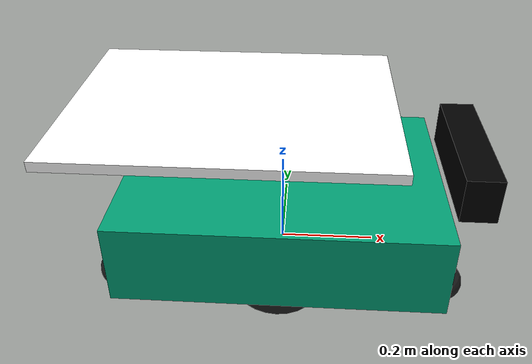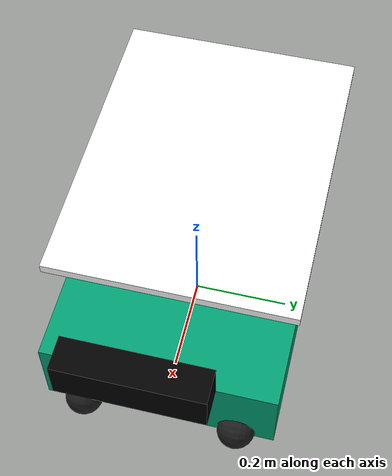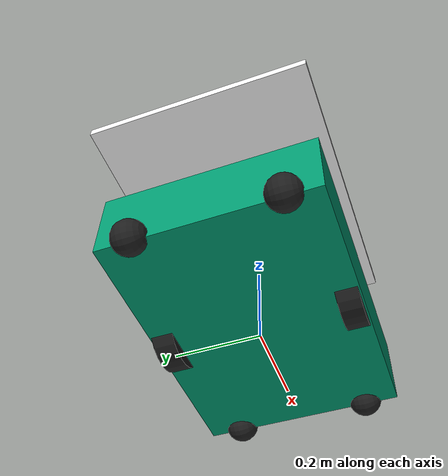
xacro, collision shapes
<?xml version="1.0"?>
<robot xmlns:xacro="http://www.ros.org/wiki/xacro" name="idr_robot">

    <!--................................ XACRO CONSTANTS .............................. -->

    <xacro:property name="chassis_mass" value="70"/>
    <xacro:property name="chassis_length" value="0.655"/>
    <xacro:property name="chassis_width" value="0.478"/>
    <xacro:property name="chassis_height" value="0.1685"/>

    <xacro:property name="traction_wheel_mass" value="1"/>
    <xacro:property name="traction_wheel_base" value="0.88"/>
    <xacro:property name="traction_max_wheel_torque" value="20000"/>
    <xacro:property name="traction_wheel_friction" value="5.0"/>

    <xacro:property name="trolley_wheel_mass" value="0.1"/>
    <xacro:property name="trolley_track_width" value="0.321"/> <!-- distance from center of front or back left wheel to right wheel-->
    <xacro:property name="trolley_wheel_friction" value="0.0"/>
    <xacro:property name="trolley_wheel_radius" value="0.0375"/>
    <!-- a small constant -->
    <xacro:property name="eps" value="0.002"/>

    <xacro:property name="traction_wheel_radius" value="0.0842"/>
    <xacro:property name="traction_wheel_width" value="0.05"/>
    <xacro:property name="traction_track_width" value="0.420"/> <!-- distance from center of middle left wheel to right wheel-->

    <xacro:property name="two_d_lidar_update_rate" value="30"/>
    <xacro:property name="two_d_lidar_sample_size" value="361"/>
    <xacro:property name="two_d_lidar_min_angle" value="0"/>
    <xacro:property name="two_d_lidar_max_angle" value="360"/>
    <xacro:property name="two_d_lidar_min_range" value="0.6"/>
    <xacro:property name="two_d_lidar_max_range" value="8"/>

    <xacro:arg name="gpu" default="false"/>
    <xacro:property name="gpu" value="$(arg gpu)" />
    <xacro:arg name="organize_cloud" default="false"/>
    <xacro:property name="organize_cloud" value="$(arg organize_cloud)" />

    <xacro:property name="camera_baseline" value="0.06"/>
    <xacro:property name="camera_height" value="0.10"/>
    <xacro:property name="camera_horizontal_fov" value="60"/>

    <xacro:arg name="robot_namespace" default=""/>
    <xacro:arg name="wheel_odom_topic" default="odom" />
    <xacro:arg name="camera_enabled" default="true" />
    <xacro:arg name="stereo_camera_enabled" default="false" />
    <xacro:arg name="two_d_lidar_enabled" default="false" />
    <xacro:arg name="publish_wheel_odom_tf" default="true" />
    <xacro:arg name="ground_truth_frame" default="map"/>
    <xacro:arg name="sim_gazebo" default="false" />
    <xacro:arg name="sim_ign" default="false" />
    <xacro:arg name="sim_gz" default="false" />
    <xacro:arg name="odometry_source" default="world" />

    <xacro:property name="odometry_source" value="$(arg odometry_source)"/>

    <!-- ............................... LOAD MACROS ................................. -->

    <xacro:include filename="$(find idr_robot)/urdf/materials.xacro"/>
    <xacro:include filename="$(find idr_robot)/urdf/macros.xacro"/>

    <xacro:if value="$(arg sim_gazebo)">
        <xacro:include filename="$(find idr_robot)/urdf/gazebo.xacro"/>
    </xacro:if>

    <xacro:if value="$(arg sim_ign)">
        <xacro:include filename="$(find idr_robot)/urdf/ign.xacro"/>
    </xacro:if>

    <xacro:if value="$(arg sim_gz)">
        <xacro:include filename="$(find idr_robot)/urdf/gz.xacro"/>
    </xacro:if>

    <!-- .......................... ...... BASE LINK .................................. -->
    <link name="base_footprint"/>

    <link name="base_link"/>

    <joint name="base_joint" type="fixed">
        <parent link="base_footprint"/>
        <child link="base_link"/>
        <origin xyz="0.0 0.0 ${chassis_height/2 + traction_wheel_radius - 0.02}" rpy="0 0 0.0" />  <!-- 0.02 is offset to make robot on the ground -->
    </joint>

    <link name="chassis_link">

        <collision>
            <origin xyz="0 0 -0.05" rpy="0 0 0" />
            <geometry>
                <box size="${chassis_length} ${chassis_width} ${chassis_height}"/>
            </geometry>
        </collision>

        <visual>
            <origin xyz="0 0 -0.02" rpy="0 0 3.14" />
            <geometry>
                <mesh filename="file://$(find idr_robot)/meshes/amr_bot_body.dae" scale="1 1 1"/>
            </geometry>
        </visual>

        <inertial>
            <mass value="${chassis_mass}" />
            <xacro:box_inertia m="${chassis_mass}" x="${chassis_length}" y="${chassis_width}" z = "${chassis_height}"/>
        </inertial>

    </link>

    <joint name="chassis_joint" type="fixed">
        <parent link="base_link"/>
        <child link="chassis_link"/>
        <origin xyz="0.0 0 0" rpy="0 0 0.0" />
    </joint>

    <!-- ................................ WHEELS ..................................... -->

    <xacro:trolley_wheel cardinality="front" dexterity="left" origin_x="${chassis_length/2}" origin_y="${trolley_track_width/2}" origin_z="-${trolley_wheel_radius+chassis_height/2}"/>
    <xacro:trolley_wheel cardinality="front" dexterity="right" origin_x="${chassis_length/2}" origin_y="-${trolley_track_width/2}" origin_z="-${trolley_wheel_radius+chassis_height/2}"/>

    <xacro:trolley_wheel cardinality="back" dexterity="left" origin_x="-${chassis_length/2}" origin_y="${trolley_track_width/2}" origin_z="-${trolley_wheel_radius+chassis_height/2}"/>
    <xacro:trolley_wheel cardinality="back" dexterity="right" origin_x="-${chassis_length/2}" origin_y="-${trolley_track_width/2}" origin_z="-${trolley_wheel_radius+chassis_height/2}"/>

    <xacro:traction_wheel_left cardinality="middle" dexterity="left" origin_x="0" origin_y="${traction_track_width/2}" origin_z="-${chassis_height/2+2*trolley_wheel_radius+eps-traction_wheel_radius}"/>
    <xacro:traction_wheel_right cardinality="middle" dexterity="right" origin_x="0" origin_y="-${traction_track_width/2}" origin_z="-${chassis_height/2+2*trolley_wheel_radius+eps-traction_wheel_radius}"/>

    <!-- ............................. 2D LIDAR ........................................ -->

    <xacro:if value="$(arg two_d_lidar_enabled)">

        <link name="two_d_lidar">
            <collision>
                <origin xyz="0 0 0" rpy="0 0 0" />
                <geometry>
                    <cylinder length="0.06" radius="0.075"/>
                </geometry>
            </collision>

            <visual>
                <origin xyz="0 0 0" rpy="0 0 0" />
                <geometry>
                    <cylinder length="0.06" radius="0.075"/>
                </geometry>
                <material name="aluminium"/>
            </visual>

            <inertial>
                <origin xyz="0 0 0" rpy="0 0 0" />
                <mass value="0.1"/>
                <xacro:cylinder_inertia m="0.1" r="0.075" h="0.06"/>
            </inertial>
        </link>

        <joint name="two_d_lidar_joint" type="fixed">
            <parent link="base_link"/>
            <child link="two_d_lidar"/>
            <origin xyz="0.0 0 0.08" rpy="0 0 0" />
        </joint>

        <gazebo reference="two_d_lidar">
            <material>Gazebo/White</material>
        </gazebo>

    </xacro:if>

    <!-- ............................. 3D LIDAR ........................................ -->

    <link name="livox_frame"/>

    <joint name="3D_lidar_joint" type="fixed">
        <parent link="base_link"/>
        <child link="livox_frame"/>
        <origin xyz="0.315 0.0 0.16" rpy="0.0 0.0 0.0"/>
    </joint>

    <!-- ............................. IMU ........................................ -->

    <link name="imu_frame"/>

    <joint name="imu_joint" type="fixed">
        <parent link="base_link"/>
        <child link="imu_frame"/>
        <origin xyz="0.0 0.0 0.08" rpy="0.0 0.0 0.0"/>
    </joint>

    <!-- ............................. CAMERA ........................................ -->

    <xacro:if value="$(arg camera_enabled)">

        <!-- KINECT CAMERA -->

        <link name="camera_base">

            <collision>
                <origin xyz="0 0 0" rpy="0 0 0" />
                <geometry>
                    <box size="0.07 0.3 0.09"/>
                </geometry>
            </collision>

            <visual>
                <origin xyz="0 0 0" rpy="0 0 0" />
                <geometry>
                    <sphere radius="0"/>
                </geometry>
                <material name="black"/>
            </visual>

            <inertial>
                <mass value="0.01"/>
                <xacro:box_inertia m="0.01" x="0.07" y="0.3" z = "0.09"/>
            </inertial>

        </link>

        <joint name="kinect_camera_joint" type="fixed">
            <origin rpy="0 0 0" xyz="${0.04+chassis_length/2} -0.032 ${0.065+chassis_height/7}"/>
            <parent link="base_link"/>
            <child link="camera_base"/>
        </joint>

    </xacro:if>

    <!-- .............................STEREO CAMERA ........................................ -->

    <xacro:if value="$(arg stereo_camera_enabled)">

        <!-- STEREO CAMERA -->

        <link name="stereo_camera">

            <collision>
                <origin xyz="0 0 0" rpy="0 0 0" />
                <geometry>
                    <box size="0.07 0.3 0.09"/>
                </geometry>
            </collision>

            <visual>
                <origin xyz="0 0 0" rpy="0 0 0" />
                <geometry>
                    <sphere radius="0"/>
                </geometry>
                <material name="black"/>
            </visual>

            <inertial>
                <mass value="0.01"/>
                <xacro:box_inertia m="0.01" x="0.07" y="0.3" z = "0.09"/>
            </inertial>

        </link>

        <joint name="stereo_camera_joint" type="fixed">
            <origin rpy="0 0 0" xyz="${chassis_length/2} 0 ${chassis_height/7}"/>
            <parent link="base_link"/>
            <child link="stereo_camera"/>
        </joint>

        <link name="stereo_camera_optical"/>

        <joint name="stereo_camera_optical_joint" type="fixed">
            <origin xyz="0 0 0" rpy="${-pi/2} 0 ${-pi/2}"/>
            <parent link="stereo_camera"/>
            <child link="stereo_camera_optical"/>
        </joint>

    </xacro:if>

    <!-- ............................. ROOF ........................................ -->

    <link name="lifting_link">

        <collision>
            <origin xyz="-0.1 0 0.015" rpy="0 0 0" />
            <geometry>
                <box size="0.65 0.5 0.02"/>
            </geometry>
        </collision>

        <visual>
                <origin xyz="0.2225 -0.2393 -0.155" rpy="1.57 0 3.14" />
                <geometry>
                    <!--box size="0.5 0.5 0.01" /-->
                    <mesh filename="file://$(find idr_robot)/meshes/lifting.STL" scale="0.001 0.001 0.001"/>
                </geometry>
                <material name="white"/>
            </visual>

        <inertial>
            <mass value="0.01"/>
            <xacro:box_inertia m="0.2" x="1" y="0.6" z = "0.015"/>
        </inertial>

    </link>

    <joint name="lift_joint" type="prismatic">
        <parent link="base_footprint"/>
        <child link="lifting_link"/>
        <origin xyz="0 0 0.31" rpy="0 0 0"/>
        <axis xyz="0 0 1" />
        <limit lower="0" upper="0.05" effort="200.0" velocity="0.01"/>
        <dynamics damping="20.0" friction="5.0"/>
    </joint>

</robot>

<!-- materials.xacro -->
<robot xmlns:xacro="http://www.ros.org/wiki/xacro" name="idr_robot">

    <material name="black">
        <color rgba="0.0 0.0 0.0 1.0"/>
    </material>

    <material name="blue">
        <color rgba="0.0 0.0 0.8 1.0"/>
    </material>

    <material name="green">
        <color rgba="0.0 0.8 0.0 1.0"/>
    </material>

    <material name="yellow">
        <color rgba="1.0 1.0 0.0 1.0"/>
    </material>

    <material name="dark_grey">
        <color rgba="0.2 0.2 0.2 1.0"/>
    </material>

    <material name="light_grey">
        <color rgba="0.8 0.8 0.8 1.0"/>
    </material>

    <material name="orange">
        <color rgba="${255/255} ${108/255} ${10/255} 1.0"/>
    </material>

    <material name="brown">
        <color rgba="${139/255} ${69/255} ${19/255} 1.0"/>
    </material>

    <material name="red">
        <color rgba="0.8 0.0 0.0 1.0"/>
    </material>

    <material name="turquoise">
        <color rgba="${64/255} ${224/255} ${208/255} 1.0"/>
    </material>

    <material name="purple">
        <color rgba="${128/255} ${0/255} ${128/255} 1.0"/>
    </material>

    <material name="white">
        <color rgba="1.0 1.0 1.0 1.0"/>
    </material>

    <material name="aluminium">
        <color rgba="0.5 0.5 0.5 1"/>
    </material>

    <material name="plastic">
        <color rgba="0.1 0.1 0.1 1"/>
    </material>

</robot>

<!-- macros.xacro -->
<robot xmlns:xacro="http://www.ros.org/wiki/xacro" name="idr_robot">

    <!--................................ INERTIA MATRICES .............................. -->

    <xacro:macro name="cylinder_inertia" params="m r h">
        <inertia ixx="${m * (3 * r * r + h * h) / 12}" ixy="0" ixz="0" iyy="${m * (3 * r * r + h * h) / 12}" iyz="0" izz="${m * r * r / 2}" />
    </xacro:macro>

    <xacro:macro name="box_inertia" params="m x y z">
        <inertia ixx="${m * (y * y + z * z) / 12}" ixy="0" ixz="0" iyy="${m * (x * x + z * z) / 12}" iyz="0" izz="${m * (y * y + x * x) / 12}" />
    </xacro:macro>

    <xacro:macro name="sphere_inertia" params="m r">
        <inertia ixx="${2 * m * r * r / 5}" ixy="0" ixz="0" iyy="${2 * m * r * r / 5}" iyz="0" izz="${2 * m * r * r / 5}" />
    </xacro:macro>

    <!-- ............................... TROLLEY WHEEL DEFINITION .............................. -->

    <xacro:macro name="trolley_wheel" params="cardinality dexterity origin_x origin_y origin_z">
        <link name="${cardinality}_${dexterity}_wheel">
            <collision>
                <origin xyz="0 0 0" rpy="0 ${pi/2} ${pi/2}" />
                <geometry>
                    <sphere radius="${trolley_wheel_radius+0.0016}"/>
                </geometry>
            </collision>

            <inertial>
                <origin xyz="0 0 0" rpy="0 0 0" />
                <mass value="${trolley_wheel_mass}"/>
                <xacro:sphere_inertia m="${trolley_wheel_mass}" r="${trolley_wheel_radius}"/>
            </inertial>

            <mu>0.0</mu>
        </link>

        <joint name="${cardinality}_${dexterity}_wheel_joint" type="fixed">
            <parent link="base_link"/>
            <child link="${cardinality}_${dexterity}_wheel"/>
            <origin xyz="${origin_x} ${origin_y} ${origin_z}" rpy="0 0 0" />
            <axis xyz="0 1 0" rpy="0 0 0" />
        </joint>

        <gazebo reference="${cardinality}_${dexterity}_wheel">
            <material>Gazebo/Black</material>
            <mu1 value="0.0001"/>
            <mu2 value="0.0001"/>
        </gazebo>
    </xacro:macro>

    <xacro:macro name="traction_wheel_left" params="cardinality dexterity origin_x origin_y origin_z">
        <link name="${cardinality}_${dexterity}_wheel_left">
            <collision>
                <origin xyz="0 0 0" rpy="0 ${pi/2} ${pi/2}" />
                <geometry>
                    <cylinder length="${traction_wheel_width}" radius="${traction_wheel_radius}"/>
                </geometry>
                <self_collide>false</self_collide>
            </collision>

            <visual>
                <origin xyz="0 -0.21 0.057" rpy="0 0 ${pi}" />
                <geometry>
                    <mesh filename="file://$(find idr_robot)/meshes/amr_bot_wheel_left.dae" scale="1 1 1"/>
                </geometry>
            </visual>

            <inertial>
                <origin xyz="0 0 0" rpy="0 ${pi/2} ${pi/2}" />
                <mass value="${traction_wheel_mass}"/>
                <xacro:cylinder_inertia m="${traction_wheel_mass}" r="${traction_wheel_radius}" h="${traction_wheel_width}"/>
            </inertial>

            <mu>5.0</mu>
        </link>

        <joint name="${cardinality}_${dexterity}_wheel_joint_left" type="continuous">
            <parent link="base_link"/>
            <child link="${cardinality}_${dexterity}_wheel_left"/>
            <origin xyz="${origin_x} ${origin_y} ${origin_z}" rpy="0 0 0" />
            <axis xyz="0 1 0" rpy="0 0 0" />
        </joint>

        <gazebo reference="${cardinality}_${dexterity}_wheel_left">
            <material>Gazebo/Black</material>
        </gazebo>
    </xacro:macro>

    <xacro:macro name="traction_wheel_right" params="cardinality dexterity origin_x origin_y origin_z">
        <link name="${cardinality}_${dexterity}_wheel_right">
            <collision>
                <origin xyz="0 0 0" rpy="0 ${pi/2} ${pi/2}" />
                <geometry>
                    <cylinder length="${traction_wheel_width}" radius="${traction_wheel_radius}"/>
                </geometry>
                <self_collide>false</self_collide>
            </collision>

            <visual>
                <origin xyz="0 0.21 0.057" rpy="0 0 ${pi}" />
                <geometry>
                    <mesh filename="file://$(find idr_robot)/meshes/amr_bot_wheel_right.dae" scale="1 1 1"/>
                </geometry>
            </visual>

            <inertial>
                <origin xyz="0 0 0" rpy="0 ${pi/2} ${pi/2}" />
                <mass value="${traction_wheel_mass}"/>
                <xacro:cylinder_inertia m="${traction_wheel_mass}" r="${traction_wheel_radius}" h="${traction_wheel_width}"/>
            </inertial>

            <mu>5.0</mu>
        </link>

        <joint name="${cardinality}_${dexterity}_wheel_joint_right" type="continuous">
            <parent link="base_link"/>
            <child link="${cardinality}_${dexterity}_wheel_right"/>
            <origin xyz="${origin_x} ${origin_y} ${origin_z}" rpy="0 0 0" />
            <axis xyz="0 1 0" rpy="0 0 0" />
        </joint>

        <gazebo reference="${cardinality}_${dexterity}_wheel_right">
            <material>Gazebo/Black</material>
        </gazebo>
    </xacro:macro>

</robot>
